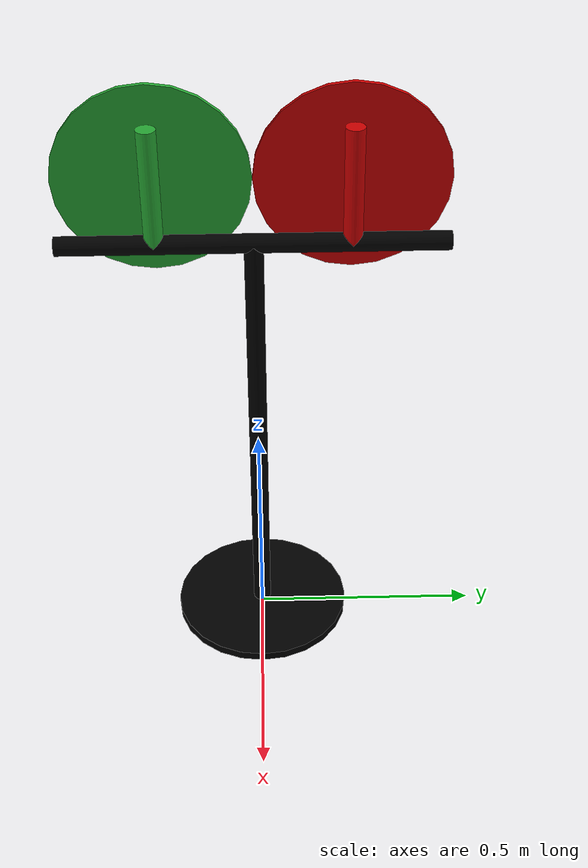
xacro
<?xml version="1.0"?>

<robot name="traffic_sign" xmlns:xacro="http://ros.org/wiki/xacro">

    <!-- Constants for robot dimensions -->
    <xacro:property name="radius" value="0.02" />
    <xacro:property name="length" value="0.25" />
    <xacro:property name="damping" value="0.1" />
    <xacro:property name="mass" value="0.5" />
    <xacro:property name="effort_limit" value="10" />
    <xacro:property name="velocity_limit" value="100" />

    <material name="orange">
        <color rgba="${255/255} ${108/255} ${10/255} 1.0" />
    </material>

    <material name="red">
        <color rgba="0.8 0.0 0.0 1.0" />
    </material>

    <material name="black">
        <color rgba="0.0 0.0 0.0 1.0" />
    </material>

    <!-- World -->
    <link name='world' />

    <joint name="joint_base" type="fixed">
        <origin xyz="0.0 0.0 0.0" rpy="0 0 -1.566" />
        <parent link="world" />
        <child link="stand_link" />
    </joint>

    <!-- Stand link -->
    <link name='stand_link'>
        <inertial>
            <origin xyz="-0.00 0.0 0.5" rpy="0 0 0" />
            <inertia ixx="1.11" ixy="0.0" ixz="0.0" iyy="100.11" iyz="0.0" izz="1.01" />
            <mass value="101.0" />
        </inertial>
        <!-- Base -->
        <visual>
            <origin xyz="0 0.0 0.01" rpy="0 0 0" />
            <geometry>
                <cylinder radius="0.2" length="0.02" />
            </geometry>
            <material name="black" />
        </visual>
        <collision>
            <origin xyz="0 0.0 0.01" rpy="0 0 0" />
            <geometry>
                <cylinder radius="0.2" length="0.02" />
            </geometry>
        </collision>
        <!-- Pole -->
        <visual>
            <origin xyz="0 0.0 0.5" rpy="0 0 0" />
            <geometry>
                <cylinder radius="0.02" length="1.0" />
            </geometry>
            <material name="black" />
        </visual>
        <collision>
            <origin xyz="0 0.0 0.5" rpy="0 0 0" />
            <geometry>
                <cylinder radius="0.02" length="1.0" />
            </geometry>
        </collision>
        <!-- Cross bar -->
        <visual>
            <origin xyz="0 0.0 1.0" rpy="0 -1.57 0" />
            <geometry>
                <cylinder radius="0.02" length="0.8" />
            </geometry>
            <material name="black" />
        </visual>
        <collision>
            <origin xyz="0 0.0 1.0" rpy="0 -1.57 0" />
            <geometry>
                <cylinder radius="0.02" length="0.8"/>
            </geometry>
        </collision>
    </link>

    <!-- red_link -->
    <link name='red_link'>
        <inertial>
            <origin xyz="-0.00 -0.00 ${length/2}" rpy="0 0 0" />
            <inertia ixx="0.0" ixy="0.0" ixz="0.0" iyy="0.0104" iyz="0.0" izz="0.0" />
            <mass value="${mass}" />
        </inertial>
        <!-- Base -->
        <visual>
            <origin xyz="0 0 ${length/2}" rpy="0 0 0" />
            <geometry>
                <cylinder radius="${radius}" length="${length}" />
            </geometry>
            <material name="red" />
        </visual>
        <collision>
            <origin xyz="0 0 ${length/2}" rpy="0 0 0" />
            <geometry>
                <cylinder radius="${radius}" length="${length}" />
            </geometry>
        </collision>
        <!-- Sign -->
        <visual>
            <origin xyz="0 -0.04 ${length/2}" rpy="1.57 0 0" />
            <geometry>
                <cylinder radius="0.2" length="0.01" />
            </geometry>
            <material name="red" />
        </visual>
        <collision>
            <origin xyz="0 -0.04 ${length/2}" rpy="1.57 0 0" />
            <geometry>
                <cylinder radius="0.2" length="0.01" />
            </geometry>
        </collision>
    </link>

    <joint name="joint_red" type="continuous">
        <origin xyz="-0.2 0 1.0" rpy="0 0 0" />
        <child link="red_link" />
        <parent link="stand_link" />
        <axis xyz="1 0 0" />
        <dynamics damping="${damping}" friction="0.0" />
        <limit effort="${effort_limit}" velocity="${velocity_limit}" />
    </joint>

    <!-- green link -->
    <link name='green_link'>
        <inertial>
            <origin xyz="-0.00 -0.00 0.125" rpy="0 0 0" />
            <inertia ixx="0.0" ixy="0.0" ixz="0.0" iyy="0.0104" iyz="0.0" izz="0.0" />
            <mass value="${mass}" />
        </inertial>
        <!-- Base -->
        <visual>
            <origin xyz="0 0 ${length/2}" rpy="0 0 0" />
            <geometry>
                <cylinder radius="${radius}" length="${length}" />
            </geometry>
            <material name="green" />
        </visual>
        <collision>
            <origin xyz="0 0 ${length/2}" rpy="0 0 0" />
            <geometry>
                <cylinder radius="${radius}" length="${length}" />
            </geometry>
        </collision>
        <!-- Sign -->
        <visual>
            <origin xyz="0 -0.04 ${length/2}" rpy="1.57 0 0" />
            <geometry>
                <cylinder radius="0.2" length="0.01" />
            </geometry>
            <material name="green" />
        </visual>
        <collision>
            <origin xyz="0 -0.04 ${length/2}" rpy="1.57 0 0" />
            <geometry>
                <cylinder radius="0.2" length="0.01" />
            </geometry>
        </collision>
    </link>

    <joint name="joint_green" type="continuous">
        <origin xyz="0.2 0 1.0" rpy="0 0 0" />
        <child link="green_link" />
        <parent link="stand_link" />
        <axis xyz="1 0 0" />
        <dynamics damping="${damping}" />
        <limit effort="${effort_limit}" velocity="${velocity_limit}" />
    </joint>

    <transmission name="tran1">
        <type>transmission_interface/SimpleTransmission</type>
        <joint name="joint_red">
            <hardwareInterface>hardware_interface/EffortJointInterface</hardwareInterface>
        </joint>
        <actuator name="motor1">
            <hardwareInterface>hardware_interface/EffortJointInterface</hardwareInterface>
            <mechanicalReduction>1</mechanicalReduction>
        </actuator>
    </transmission>

    <transmission name="tran2">
        <type>transmission_interface/SimpleTransmission</type>
        <joint name="joint_green">
            <hardwareInterface>hardware_interface/EffortJointInterface</hardwareInterface>
        </joint>
        <actuator name="motor2">
            <hardwareInterface>hardware_interface/EffortJointInterface</hardwareInterface>
            <mechanicalReduction>1</mechanicalReduction>
        </actuator>
    </transmission>

    <!-- ros_control plugin -->
    <gazebo>
        <plugin name="gazebo_ros_control" filename="libgazebo_ros_control.so">
            <robotNamespace>/traffic_sign</robotNamespace>
            <robotSimType>gazebo_ros_control/DefaultRobotHWSim</robotSimType>
        </plugin>
    </gazebo>

    <!-- base_link -->
    <gazebo reference="stand_link">
        <material>Gazebo/Black</material>
    </gazebo>

    <!-- link_1 -->
    <gazebo reference="red_link">
        <mu1>0.2</mu1>
        <mu2>0.2</mu2>
        <material>Gazebo/Red</material>
    </gazebo>

    <!-- link_2 -->
    <gazebo reference="green_link">
        <mu1>0.2</mu1>
        <mu2>0.2</mu2>
        <material>Gazebo/Green</material>
    </gazebo>

</robot>
